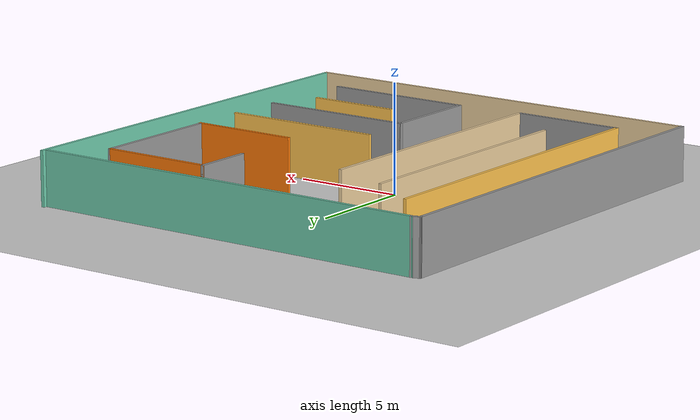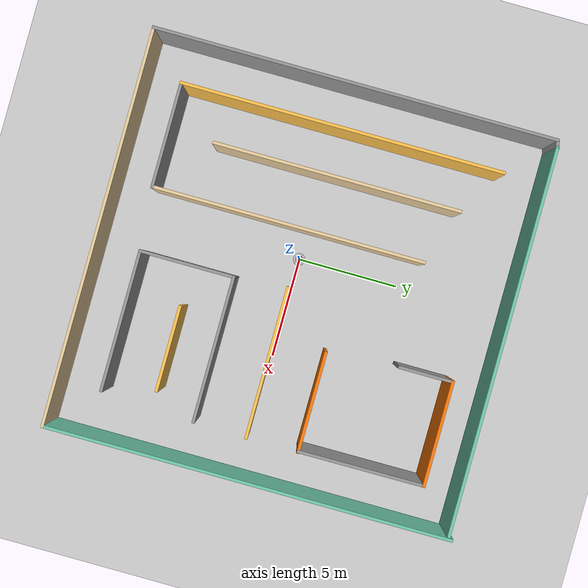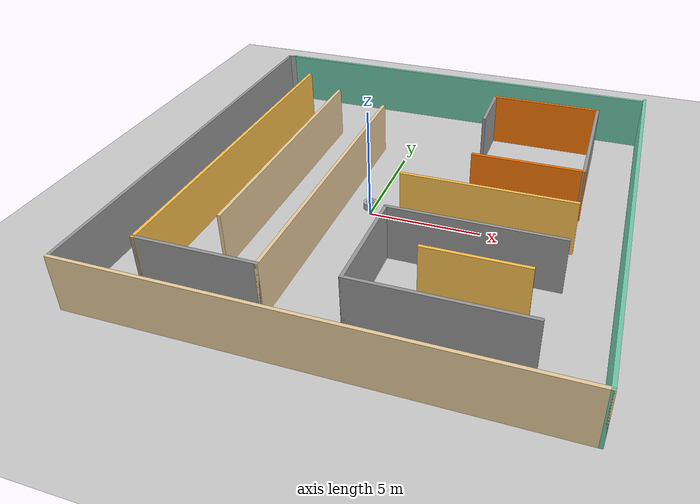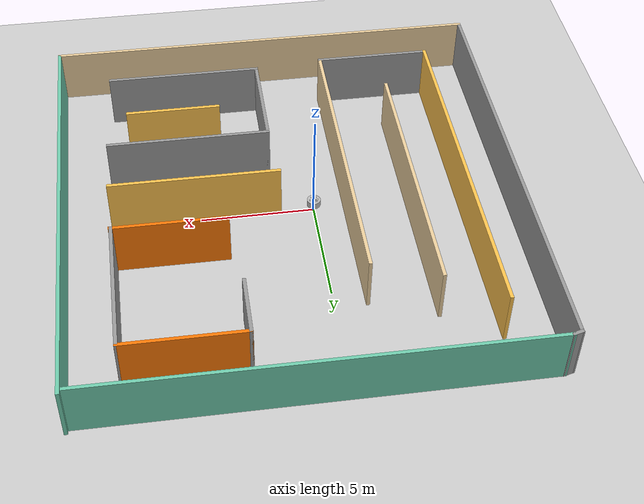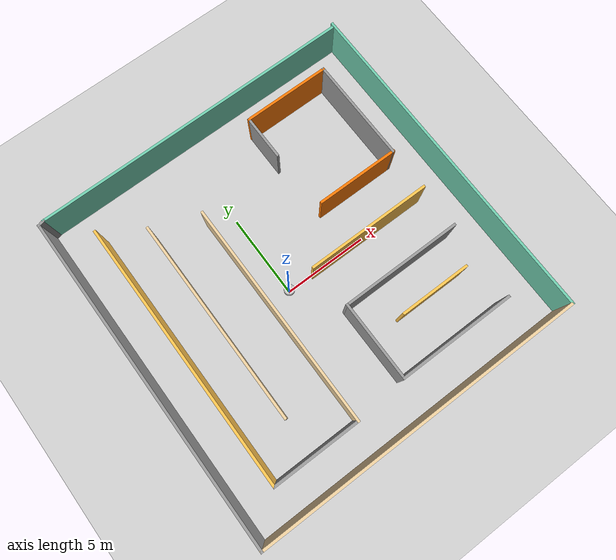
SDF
<sdf version="1.6">
 <world name="default">
  <light name="sun" type="directional">
   <pose>0 0 10 0 -0 0</pose>
   <diffuse>0.8 0.8 0.8 1</diffuse>
   <specular>0.2 0.2 0.2 1</specular>
   <attenuation>
    <range>1000</range>
    <constant>0.9</constant>
    <linear>0.01</linear>
    <quadratic>0.001</quadratic>
   </attenuation>
   <direction>-0.5 0.1 -0.9</direction>
  </light>
  <model name="animated_cylinder">
   <pose>0 0 0.5 0 0 0</pose>
   <link name="link">
    <collision name="animated_cylinder_collision">
     <geometry><cylinder><radius>0.2</radius><length>0.3</length></cylinder></geometry>
    </collision>
    <visual name="visual">
     <geometry><cylinder><radius>0.2</radius><length>0.3</length></cylinder></geometry>
    </visual>
    <inertial>
     <inertia><ixx>1</ixx><ixy>0</ixy><ixz>0</ixz><iyy>1</iyy><iyz>0</iyz><izz>1</izz></inertia>
     <mass>1</mass>
    </inertial>
    <gravity>0</gravity>
   </link>
   <plugin name="push_animate" filename="libbox_forward_movement5.so"/>
  </model>
  <model name="animated_cylinder2">
   <pose>0 0 0.5 0 0 0</pose>
   <link name="link">
    <collision name="animated_cylinder_collision2">
     <geometry><cylinder><radius>0.3</radius><length>0.3</length></cylinder></geometry>
    </collision>
    <visual name="visual">
     <geometry><cylinder><radius>0.3</radius><length>0.3</length></cylinder></geometry>
    </visual>
    <inertial>
     <inertia><ixx>1</ixx><ixy>0</ixy><ixz>0</ixz><iyy>1</iyy><iyz>0</iyz><izz>1</izz></inertia>
     <mass>1</mass>
    </inertial>
    <gravity>0</gravity>
   </link>
   <plugin name="push_animate2" filename="libbox_forward_movement9.so"/>
  </model>
  <model name="ground_plane">
   <static>1</static>
   <link name="link">
    <collision name="collision">
     <geometry><plane><normal>0 0 1</normal><size>100 100</size></plane></geometry>
     <surface><friction><ode><mu>100</mu><mu2>50</mu2></ode></friction></surface>
    </collision>
    <visual name="visual">
     <cast_shadows>0</cast_shadows>
     <geometry><plane><normal>0 0 1</normal><size>100 100</size></plane></geometry>
     <material>
      <script><uri>file://media/materials/scripts/gazebo.material</uri><name>Gazebo/Grey</name></script>
     </material>
    </visual>
   </link>
  </model>
  <gravity>0 0 -9.8</gravity>
  <magnetic_field>6e-06 2.3e-05 -4.2e-05</magnetic_field>
  <atmosphere type="adiabatic"/>
  <physics name="default_physics" default="0" type="ode">
   <max_step_size>0.001</max_step_size>
   <real_time_factor>1</real_time_factor>
   <real_time_update_rate>1000</real_time_update_rate>
  </physics>
  <scene><ambient>0.4 0.4 0.4 1</ambient><background>0.7 0.7 0.7 1</background><shadows>1</shadows></scene>
  <audio><device>default</device></audio>
  <spherical_coordinates>
   <surface_model>EARTH_WGS84</surface_model>
   <latitude_deg>0</latitude_deg>
   <longitude_deg>0</longitude_deg>
   <elevation>0</elevation>
   <heading_deg>0</heading_deg>
  </spherical_coordinates>
  <model name="room3">
   <pose>1.1207 0.487226 0 0 -0 0</pose>
   <link name="Wall_0">
    <collision name="Wall_0_Collision">
     <geometry><box><size>19.25 0.15 2.5</size></box></geometry>
     <pose>0 0 1.25 0 -0 0</pose>
    </collision>
    <visual name="Wall_0_Visual">
     <pose>0 0 1.25 0 -0 0</pose>
     <geometry><box><size>19.25 0.15 2.5</size></box></geometry>
     <material>
      <script><uri>file://media/materials/scripts/gazebo.material</uri><name>Gazebo/Grey</name></script>
      <ambient>0.435294 0.796078 0.67451 1</ambient>
     </material>
     <meta><layer>0</layer></meta>
    </visual>
    <pose>0.096502 9.89059 0 0 -0 0</pose>
   </link>
   <link name="Wall_11">
    <collision name="Wall_11_Collision">
     <geometry><box><size>12.25 0.15 2.5</size></box></geometry>
     <pose>0 0 1.25 0 -0 0</pose>
    </collision>
    <visual name="Wall_11_Visual">
     <pose>0 0 1.25 0 -0 0</pose>
     <geometry><box><size>12.25 0.15 2.5</size></box></geometry>
     <material>
      <script><uri>file://media/materials/scripts/gazebo.material</uri><name>Gazebo/Grey</name></script>
      <ambient>0.921569 0.807843 0.615686 1</ambient>
     </material>
     <meta><layer>0</layer></meta>
    </visual>
    <pose>-5.30387 0.22296 0 0 -0 -1.5708</pose>
   </link>
   <link name="Wall_13">
    <collision name="Wall_13_Collision">
     <geometry><box><size>5.25 0.15 2.5</size></box></geometry>
     <pose>0 0 1.25 0 -0 0</pose>
    </collision>
    <visual name="Wall_13_Visual">
     <pose>0 0 1.25 0 -0 0</pose>
     <geometry><box><size>5.25 0.15 2.5</size></box></geometry>
     <material>
      <script><uri>file://media/materials/scripts/gazebo.material</uri><name>Gazebo/Grey</name></script>
      <ambient>0.996078 0.47451 0.0196078 1</ambient>
     </material>
     <meta><layer>0</layer></meta>
    </visual>
    <pose>5.11979 8.10837 0 0 -0 0</pose>
   </link>
   <link name="Wall_14">
    <collision name="Wall_14_Collision">
     <geometry><box><size>6.31424 0.15 2.5</size></box></geometry>
     <pose>0 0 1.25 0 -0 0</pose>
    </collision>
    <visual name="Wall_14_Visual">
     <pose>0 0 1.25 0 -0 0</pose>
     <geometry><box><size>6.31424 0.15 2.5</size></box></geometry>
     <material>
      <script><uri>file://media/materials/scripts/gazebo.material</uri><name>Gazebo/Grey</name></script>
      <ambient>1 1 1 1</ambient>
     </material>
     <meta><layer>0</layer></meta>
    </visual>
    <pose>7.68309 5.02637 0 0 -0 -1.56648</pose>
   </link>
   <link name="Wall_15">
    <collision name="Wall_15_Collision">
     <geometry><box><size>5 0.15 2.5</size></box></geometry>
     <pose>0 0 1.25 0 -0 0</pose>
    </collision>
    <visual name="Wall_15_Visual">
     <pose>0 0 1.25 0 -0 0</pose>
     <geometry><box><size>5 0.15 2.5</size></box></geometry>
     <material>
      <script><uri>file://media/materials/scripts/gazebo.material</uri><name>Gazebo/Grey</name></script>
      <ambient>0.996078 0.47451 0.0196078 1</ambient>
     </material>
     <meta><layer>0</layer></meta>
    </visual>
    <pose>5.29799 1.94437 0 0 -0 3.14159</pose>
   </link>
   <link name="Wall_17">
    <collision name="Wall_17_Collision">
     <geometry><box><size>7.5 0.15 2.5</size></box></geometry>
     <pose>0 0 1.25 0 -0 0</pose>
    </collision>
    <visual name="Wall_17_Visual">
     <pose>0 0 1.25 0 -0 0</pose>
     <geometry><box><size>7.5 0.15 2.5</size></box></geometry>
     <material>
      <script><uri>file://media/materials/scripts/gazebo.material</uri><name>Gazebo/Grey</name></script>
      <ambient>1 0.764706 0.305882 1</ambient>
     </material>
     <meta><layer>0</layer></meta>
    </visual>
    <pose>4.06358 -0.616492 0 0 -0 0</pose>
   </link>
   <link name="Wall_19">
    <collision name="Wall_19_Collision">
     <geometry><box><size>7.25 0.15 2.5</size></box></geometry>
     <pose>0 0 1.25 0 -0 0</pose>
    </collision>
    <visual name="Wall_19_Visual">
     <pose>0 0 1.25 0 -0 0</pose>
     <geometry><box><size>7.25 0.15 2.5</size></box></geometry>
     <material>
      <script><uri>file://media/materials/scripts/gazebo.material</uri><name>Gazebo/Grey</name></script>
      <ambient>1 1 1 1</ambient>
     </material>
     <meta><layer>0</layer></meta>
    </visual>
    <pose>4.12478 -3.22331 0 0 -0 0</pose>
   </link>
   <link name="Wall_2">
    <collision name="Wall_2_Collision">
     <geometry><box><size>0.5 0.15 2.5</size></box></geometry>
     <pose>0 0 1.25 0 -0 0</pose>
    </collision>
    <visual name="Wall_2_Visual">
     <pose>0 0 1.25 0 -0 0</pose>
     <geometry><box><size>0.5 0.15 2.5</size></box></geometry>
     <material>
      <script><uri>file://media/materials/scripts/gazebo.material</uri><name>Gazebo/Grey</name></script>
      <ambient>1 1 1 1</ambient>
     </material>
     <meta><layer>0</layer></meta>
    </visual>
    <pose>-9.62253 9.84529 0 0 -0 -2.87979</pose>
   </link>
   <link name="Wall_21">
    <collision name="Wall_21_Collision">
     <geometry><box><size>4.75 0.15 2.5</size></box></geometry>
     <pose>0 0 1.25 0 -0 0</pose>
    </collision>
    <visual name="Wall_21_Visual">
     <pose>0 0 1.25 0 -0 0</pose>
     <geometry><box><size>4.75 0.15 2.5</size></box></geometry>
     <material>
      <script><uri>file://media/materials/scripts/gazebo.material</uri><name>Gazebo/Grey</name></script>
      <ambient>1 1 1 1</ambient>
     </material>
     <meta><layer>0</layer></meta>
    </visual>
    <pose>0.574777 -5.52331 0 0 -0 -1.5708</pose>
   </link>
   <link name="Wall_22">
    <collision name="Wall_22_Collision">
     <geometry><box><size>7 0.15 2.5</size></box></geometry>
     <pose>0 0 1.25 0 -0 0</pose>
    </collision>
    <visual name="Wall_22_Visual">
     <pose>0 0 1.25 0 -0 0</pose>
     <geometry><box><size>7 0.15 2.5</size></box></geometry>
     <material>
      <script><uri>file://media/materials/scripts/gazebo.material</uri><name>Gazebo/Grey</name></script>
      <ambient>1 1 1 1</ambient>
     </material>
     <meta><layer>0</layer></meta>
    </visual>
    <pose>3.99978 -7.82331 0 0 -0 0</pose>
   </link>
   <link name="Wall_24">
    <collision name="Wall_24_Collision">
     <geometry><box><size>4.25 0.15 2.5</size></box></geometry>
     <pose>0 0 1.25 0 -0 0</pose>
    </collision>
    <visual name="Wall_24_Visual">
     <pose>0 0 1.25 0 -0 0</pose>
     <geometry><box><size>4.25 0.15 2.5</size></box></geometry>
     <material>
      <script><uri>file://media/materials/scripts/gazebo.material</uri><name>Gazebo/Grey</name></script>
      <ambient>1 0.764706 0.305882 1</ambient>
     </material>
     <meta><layer>0</layer></meta>
    </visual>
    <pose>4.67299 -5.29813 0 0 -0 0</pose>
   </link>
   <link name="Wall_26">
    <collision name="Wall_26_Collision">
     <geometry><box><size>2.75 0.15 2.5</size></box></geometry>
     <pose>0 0 1.25 0 -0 0</pose>
    </collision>
    <visual name="Wall_26_Visual">
     <pose>0 0 1.25 0 -0 0</pose>
     <geometry><box><size>2.75 0.15 2.5</size></box></geometry>
     <material>
      <script><uri>file://media/materials/scripts/gazebo.material</uri><name>Gazebo/Grey</name></script>
      <ambient>1 1 1 1</ambient>
     </material>
     <meta><layer>0</layer></meta>
    </visual>
    <pose>2.56979 6.80837 0 0 -0 -1.5708</pose>
   </link>
   <link name="Wall_3">
    <collision name="Wall_3_Collision">
     <geometry><box><size>20 0.15 2.5</size></box></geometry>
     <pose>0 0 1.25 0 -0 0</pose>
    </collision>
    <visual name="Wall_3_Visual">
     <pose>0 0 1.25 0 -0 0</pose>
     <geometry><box><size>20 0.15 2.5</size></box></geometry>
     <material>
      <script><uri>file://media/materials/scripts/gazebo.material</uri><name>Gazebo/Grey</name></script>
      <ambient>1 1 1 1</ambient>
     </material>
     <meta><layer>0</layer></meta>
    </visual>
    <pose>-9.79157 -0.125 0 0 -0 -1.5708</pose>
   </link>
   <link name="Wall_4">
    <collision name="Wall_4_Collision">
     <geometry><box><size>19.75 0.15 2.5</size></box></geometry>
     <pose>0 0 1.25 0 -0 0</pose>
    </collision>
    <visual name="Wall_4_Visual">
     <pose>0 0 1.25 0 -0 0</pose>
     <geometry><box><size>19.75 0.15 2.5</size></box></geometry>
     <material>
      <script><uri>file://media/materials/scripts/gazebo.material</uri><name>Gazebo/Grey</name></script>
      <ambient>0.921569 0.807843 0.615686 1</ambient>
     </material>
     <meta><layer>0</layer></meta>
    </visual>
    <pose>0.008428 -10.05 0 0 -0 0</pose>
   </link>
   <link name="Wall_5">
    <collision name="Wall_5_Collision">
     <geometry><box><size>20.25 0.15 2.5</size></box></geometry>
     <pose>0 0 1.25 0 -0 0</pose>
    </collision>
    <visual name="Wall_5_Visual">
     <pose>0 0 1.25 0 -0 0</pose>
     <geometry><box><size>20.25 0.15 2.5</size></box></geometry>
     <material>
      <script><uri>file://media/materials/scripts/gazebo.material</uri><name>Gazebo/Grey</name></script>
      <ambient>0.435294 0.796078 0.67451 1</ambient>
     </material>
     <meta><layer>0</layer></meta>
    </visual>
    <pose>9.80843 0 0 0 -0 1.5708</pose>
   </link>
   <link name="Wall_7">
    <collision name="Wall_7_Collision">
     <geometry><box><size>16 0.15 2.5</size></box></geometry>
     <pose>0 0 1.25 0 -0 0</pose>
    </collision>
    <visual name="Wall_7_Visual">
     <pose>0 0 1.25 0 -0 0</pose>
     <geometry><box><size>16 0.15 2.5</size></box></geometry>
     <material>
      <script><uri>file://media/materials/scripts/gazebo.material</uri><name>Gazebo/Grey</name></script>
      <ambient>1 0.764706 0.305882 1</ambient>
     </material>
     <meta><layer>0</layer></meta>
    </visual>
    <pose>-7.61808 -0.162429 0 0 -0 -1.5708</pose>
   </link>
   <link name="Wall_8">
    <collision name="Wall_8_Collision">
     <geometry><box><size>5.25 0.15 2.5</size></box></geometry>
     <pose>0 0 1.25 0 -0 0</pose>
    </collision>
    <visual name="Wall_8_Visual">
     <pose>0 0 1.25 0 -0 0</pose>
     <geometry><box><size>5.25 0.15 2.5</size></box></geometry>
     <material>
      <script><uri>file://media/materials/scripts/gazebo.material</uri><name>Gazebo/Grey</name></script>
      <ambient>1 1 1 1</ambient>
     </material>
     <meta><layer>0</layer></meta>
    </visual>
    <pose>-5.06808 -8.08743 0 0 -0 0</pose>
   </link>
   <link name="Wall_9">
    <collision name="Wall_9_Collision">
     <geometry><box><size>13.5 0.15 2.5</size></box></geometry>
     <pose>0 0 1.25 0 -0 0</pose>
    </collision>
    <visual name="Wall_9_Visual">
     <pose>0 0 1.25 0 -0 0</pose>
     <geometry><box><size>13.5 0.15 2.5</size></box></geometry>
     <material>
      <script><uri>file://media/materials/scripts/gazebo.material</uri><name>Gazebo/Grey</name></script>
      <ambient>0.921569 0.807843 0.615686 1</ambient>
     </material>
     <meta><layer>0</layer></meta>
    </visual>
    <pose>-2.51809 -1.41243 0 0 -0 1.5708</pose>
   </link>
   <static>1</static>
  </model>
 </world>
</sdf>
